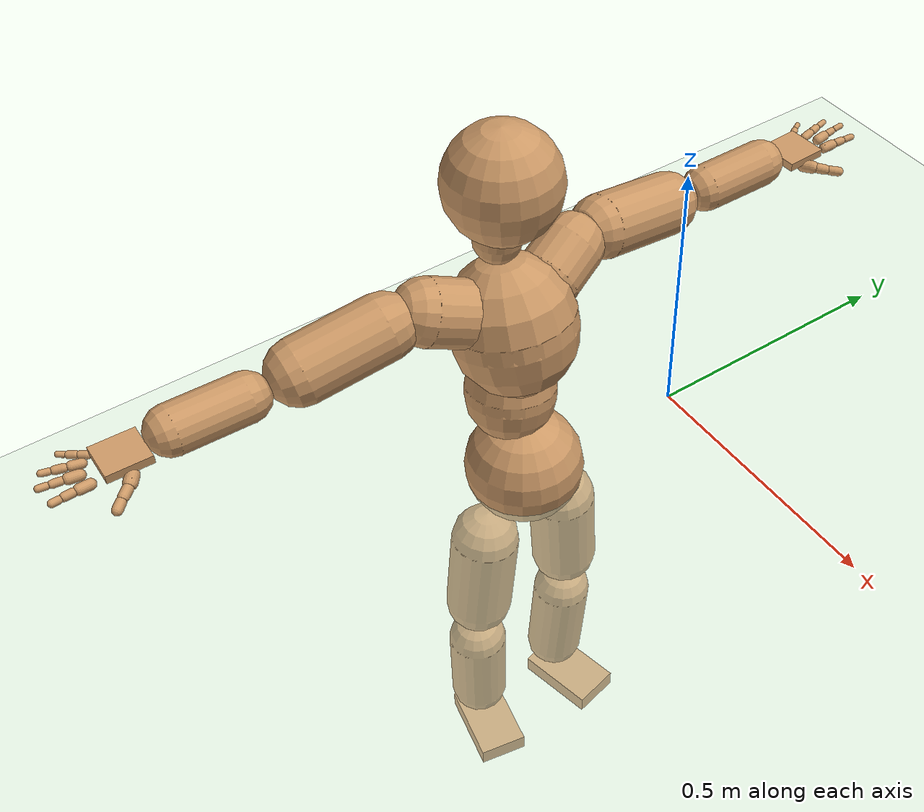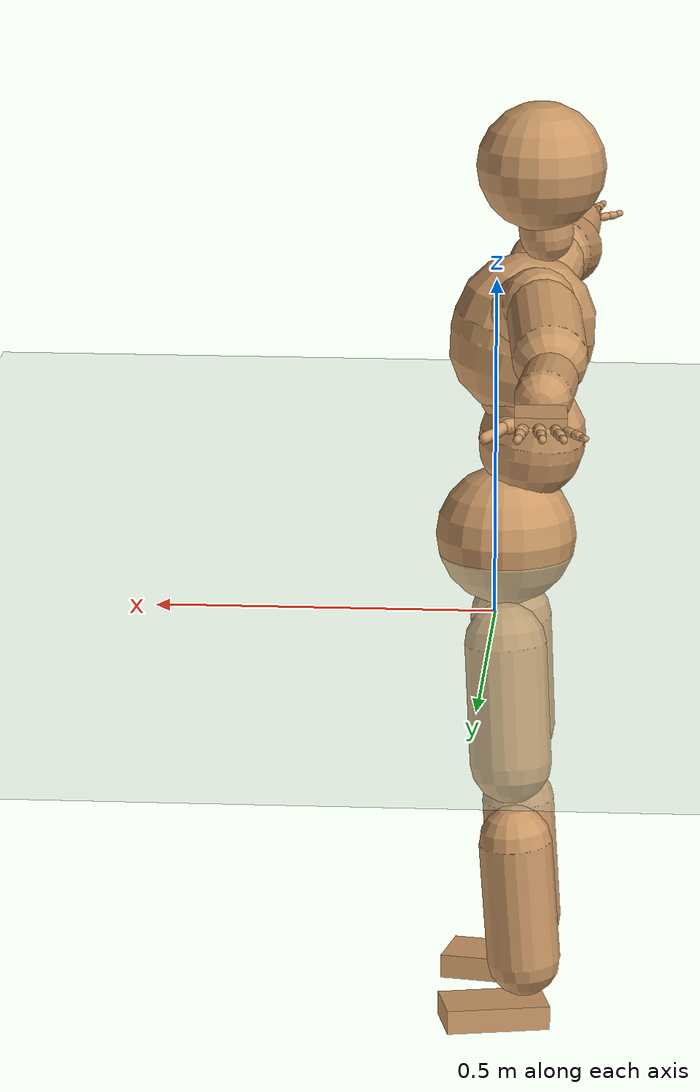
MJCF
<mujoco model="humanoid">
  <compiler coordinate="local" angle="radian"/>
  <default>
    <joint damping="0.0" armature="0.01" stiffness="0.0" limited="true"/>
    <geom conaffinity="1" condim="3" contype="7" margin="0.001" rgba="0.8 0.6 .4 1"/>
  </default>
  <asset>
    <texture type="skybox" builtin="gradient" rgb1=".4 .5 .6" rgb2="0 0 0" width="100" height="100"/>
    <texture builtin="flat" height="1278" mark="cross" markrgb="1 1 1" name="texgeom" random="0.01" rgb1="0.8 0.6 0.4" rgb2="0.8 0.6 0.4" type="cube" width="127"/>
    <texture builtin="checker" height="100" name="texplane" rgb1="0 0 0" rgb2="0.8 0.8 0.8" type="2d" width="100"/>
    <material name="MatPlane" reflectance="0.5" shininess="1" specular="1" texrepeat="60 60" texture="texplane"/>
    <material name="geom" texture="texgeom" texuniform="true"/>
  </asset>
  <worldbody>
    <light cutoff="100" diffuse="1 1 1" dir="-0 0 -1.3" directional="true" exponent="1" pos="0 0 1.3" specular=".1 .1 .1"/>
    <geom conaffinity="1" condim="3" name="floor" pos="0 0 0" rgba="0.8 0.9 0.8 1" size="100 100 .2" type="plane" material="MatPlane"/>
    <body name="Pelvis" pos="0.0007 -0.3308 0.0265">
      <freejoint name="Pelvis"/>
      <geom type="sphere" contype="1" conaffinity="1" density="500" size="0.1070" pos="0.0000 0.0000 0.0000" name="Pelvis"/>
      <body name="L_Hip" pos="-0.001 0.0811 -0.0864">
        <joint name="L_Hip_x" type="hinge" pos="0 0 0" axis="1 0 0" stiffness="800" damping="80" armature="0.02" range="-180.0000 180.0000"/>
        <joint name="L_Hip_y" type="hinge" pos="0 0 0" axis="0 1 0" stiffness="800" damping="80" armature="0.02" range="-180.0000 180.0000"/>
        <joint name="L_Hip_z" type="hinge" pos="0 0 0" axis="0 0 1" stiffness="800" damping="80" armature="0.02" range="-180.0000 180.0000"/>
        <geom type="capsule" contype="1" conaffinity="1" density="500" fromto="-0.0032 0.0048 -0.0614 -0.0129 0.0193 -0.2456" size="0.0626" name="L_Hip"/>
        <body name="L_Knee" pos="-0.0162 0.0241 -0.307">
          <joint name="L_Knee_x" type="hinge" pos="0 0 0" axis="1 0 0" stiffness="800" damping="80" armature="0.02" range="-180.0000 180.0000"/>
          <joint name="L_Knee_y" type="hinge" pos="0 0 0" axis="0 1 0" stiffness="800" damping="80" armature="0.02" range="-180.0000 180.0000"/>
          <joint name="L_Knee_z" type="hinge" pos="0 0 0" axis="0 0 1" stiffness="800" damping="80" armature="0.02" range="-180.0000 180.0000"/>
          <geom type="capsule" contype="1" conaffinity="1" density="500" fromto="-0.0046 -0.0025 -0.0641 -0.0184 -0.0099 -0.2563" size="0.056" name="L_Knee"/>
          <body name="L_Ankle" pos="-0.023 -0.0124 -0.3204">
            <joint name="L_Ankle_x" type="hinge" pos="0 0 0" axis="1 0 0" stiffness="800" damping="80" armature="0.02" range="-180.0000 180.0000"/>
            <joint name="L_Ankle_y" type="hinge" pos="0 0 0" axis="0 1 0" stiffness="800" damping="80" armature="0.02" range="-180.0000 180.0000"/>
            <joint name="L_Ankle_z" type="hinge" pos="0 0 0" axis="0 0 1" stiffness="800" damping="80" armature="0.02" range="-180.0000 180.0000"/>
            <geom type="box" contype="1" conaffinity="1" density="500" pos="0.0498 0.0109 -0.0176" size="0.0793 0.0466 0.0185" quat="0.9942 0.0000 0.0000 0.1077" name="L_Ankle"/>
            <body name="L_Toe" pos="0.0997 0.0219 -0.0351">
              <joint name="L_Toe_x" type="hinge" pos="0 0 0" axis="1 0 0" stiffness="500" damping="50" armature="0.02" range="-180.0000 180.0000"/>
              <joint name="L_Toe_y" type="hinge" pos="0 0 0" axis="0 1 0" stiffness="500" damping="50" armature="0.02" range="-180.0000 180.0000"/>
              <joint name="L_Toe_z" type="hinge" pos="0 0 0" axis="0 0 1" stiffness="500" damping="50" armature="0.02" range="-180.0000 180.0000"/>
              <geom type="box" contype="1" conaffinity="1" density="500" pos="0.0000 0.0000 0.0192" size="0.0009 0.0023 0.001" quat="0.9934 0.0000 0.0000 0.1150" name="L_Toe"/>
            </body>
          </body>
        </body>
      </body>
      <body name="R_Hip" pos="-0.0019 -0.0799 -0.0921">
        <joint name="R_Hip_x" type="hinge" pos="0 0 0" axis="1 0 0" stiffness="800" damping="80" armature="0.02" range="-180.0000 180.0000"/>
        <joint name="R_Hip_y" type="hinge" pos="0 0 0" axis="0 1 0" stiffness="800" damping="80" armature="0.02" range="-180.0000 180.0000"/>
        <joint name="R_Hip_z" type="hinge" pos="0 0 0" axis="0 0 1" stiffness="800" damping="80" armature="0.02" range="-180.0000 180.0000"/>
        <geom type="capsule" contype="1" conaffinity="1" density="500" fromto="-0.0020 -0.0058 -0.0606 -0.0081 -0.0231 -0.2426" size="0.0624" name="R_Hip"/>
        <body name="R_Knee" pos="-0.0101 -0.0288 -0.3032">
          <joint name="R_Knee_x" type="hinge" pos="0 0 0" axis="1 0 0" stiffness="800" damping="80" armature="0.02" range="-180.0000 180.0000"/>
          <joint name="R_Knee_y" type="hinge" pos="0 0 0" axis="0 1 0" stiffness="800" damping="80" armature="0.02" range="-180.0000 180.0000"/>
          <joint name="R_Knee_z" type="hinge" pos="0 0 0" axis="0 0 1" stiffness="800" damping="80" armature="0.02" range="-180.0000 180.0000"/>
          <geom type="capsule" contype="1" conaffinity="1" density="500" fromto="-0.0039 0.0016 -0.0624 -0.0158 0.0062 -0.2497" size="0.056" name="R_Knee"/>
          <body name="R_Ankle" pos="-0.0197 0.0078 -0.3121">
            <joint name="R_Ankle_x" type="hinge" pos="0 0 0" axis="1 0 0" stiffness="800" damping="80" armature="0.02" range="-180.0000 180.0000"/>
            <joint name="R_Ankle_y" type="hinge" pos="0 0 0" axis="0 1 0" stiffness="800" damping="80" armature="0.02" range="-180.0000 180.0000"/>
            <joint name="R_Ankle_z" type="hinge" pos="0 0 0" axis="0 0 1" stiffness="800" damping="80" armature="0.02" range="-180.0000 180.0000"/>
            <geom type="box" contype="1" conaffinity="1" density="500" pos="0.0469 -0.0090 -0.0192" size="0.0793 0.0466 0.0185" quat="0.9955 0.0000 0.0000 -0.0947" name="R_Ankle"/>
            <body name="R_Toe" pos="0.0938 -0.018 -0.0383">
              <joint name="R_Toe_x" type="hinge" pos="0 0 0" axis="1 0 0" stiffness="500" damping="50" armature="0.02" range="-180.0000 180.0000"/>
              <joint name="R_Toe_y" type="hinge" pos="0 0 0" axis="0 1 0" stiffness="500" damping="50" armature="0.02" range="-180.0000 180.0000"/>
              <joint name="R_Toe_z" type="hinge" pos="0 0 0" axis="0 0 1" stiffness="500" damping="50" armature="0.02" range="-180.0000 180.0000"/>
              <geom type="box" contype="1" conaffinity="1" density="500" pos="0.0000 0.0000 0.0208" size="0.0009 0.0023 0.001" quat="0.9966 0.0000 0.0000 -0.0827" name="R_Toe"/>
            </body>
          </body>
        </body>
      </body>
      <body name="Torso" pos="-0.0314 -0.0064 0.0998">
        <joint name="Torso_x" type="hinge" pos="0 0 0" axis="1 0 0" stiffness="1000" damping="100" armature="0.02" range="-180.0000 180.0000"/>
        <joint name="Torso_y" type="hinge" pos="0 0 0" axis="0 1 0" stiffness="1000" damping="100" armature="0.02" range="-180.0000 180.0000"/>
        <joint name="Torso_z" type="hinge" pos="0 0 0" axis="0 0 1" stiffness="1000" damping="100" armature="0.02" range="-180.0000 180.0000"/>
        <geom type="capsule" contype="1" conaffinity="1" density="500" fromto="-0.0087 0.0085 0.0613 -0.0058 0.0057 0.0408" size="0.0804" name="Torso"/>
        <body name="Spine" pos="-0.0144 0.0142 0.1021">
          <joint name="Spine_x" type="hinge" pos="0 0 0" axis="1 0 0" stiffness="1000" damping="100" armature="0.02" range="-180.0000 180.0000"/>
          <joint name="Spine_y" type="hinge" pos="0 0 0" axis="0 1 0" stiffness="1000" damping="100" armature="0.02" range="-180.0000 180.0000"/>
          <joint name="Spine_z" type="hinge" pos="0 0 0" axis="0 0 1" stiffness="1000" damping="100" armature="0.02" range="-180.0000 180.0000"/>
          <geom type="capsule" contype="1" conaffinity="1" density="500" fromto="0.0242 -0.0049 0.0241 0.0161 -0.0032 0.0160" size="0.0649" name="Spine"/>
          <body name="Chest" pos="0.0403 -0.0081 0.0401">
            <joint name="Chest_x" type="hinge" pos="0 0 0" axis="1 0 0" stiffness="1000" damping="100" armature="0.02" range="-180.0000 180.0000"/>
            <joint name="Chest_y" type="hinge" pos="0 0 0" axis="0 1 0" stiffness="1000" damping="100" armature="0.02" range="-180.0000 180.0000"/>
            <joint name="Chest_z" type="hinge" pos="0 0 0" axis="0 0 1" stiffness="1000" damping="100" armature="0.02" range="-180.0000 180.0000"/>
            <geom type="capsule" contype="1" conaffinity="1" density="500" fromto="-0.0207 -0.0021 0.0853 -0.0138 -0.0014 0.0568" size="0.109" name="Chest"/>
            <body name="Neck" pos="-0.0541 -0.0068 0.1971">
              <joint name="Neck_x" type="hinge" pos="0 0 0" axis="1 0 0" stiffness="500" damping="50" armature="0.02" range="-180.0000 180.0000"/>
              <joint name="Neck_y" type="hinge" pos="0 0 0" axis="0 1 0" stiffness="500" damping="50" armature="0.02" range="-180.0000 180.0000"/>
              <joint name="Neck_z" type="hinge" pos="0 0 0" axis="0 0 1" stiffness="500" damping="50" armature="0.02" range="-180.0000 180.0000"/>
              <geom type="capsule" contype="1" conaffinity="1" density="500" fromto="0.0020 0.0019 0.0266 0.0080 0.0075 0.1065" size="0.0411" name="Neck"/>
              <body name="Head" pos="0.01 0.0094 0.1331">
                <joint name="Head_x" type="hinge" pos="0 0 0" axis="1 0 0" stiffness="500" damping="50" armature="0.02" range="-180.0000 180.0000"/>
                <joint name="Head_y" type="hinge" pos="0 0 0" axis="0 1 0" stiffness="500" damping="50" armature="0.02" range="-180.0000 180.0000"/>
                <joint name="Head_z" type="hinge" pos="0 0 0" axis="0 0 1" stiffness="500" damping="50" armature="0.02" range="-180.0000 180.0000"/>
                <geom type="sphere" contype="1" conaffinity="1" density="500" size="0.0977" pos="0.0000 0.0000 0.0000" name="Head"/>
              </body>
            </body>
            <body name="L_Thorax" pos="-0.0214 0.0571 0.1166">
              <joint name="L_Thorax_x" type="hinge" pos="0 0 0" axis="1 0 0" stiffness="500" damping="50" armature="0.02" range="-180.0000 180.0000"/>
              <joint name="L_Thorax_y" type="hinge" pos="0 0 0" axis="0 1 0" stiffness="500" damping="50" armature="0.02" range="-180.0000 180.0000"/>
              <joint name="L_Thorax_z" type="hinge" pos="0 0 0" axis="0 0 1" stiffness="500" damping="50" armature="0.02" range="-180.0000 180.0000"/>
              <geom type="capsule" contype="1" conaffinity="1" density="500" fromto="-0.0064 0.0194 0.0081 -0.0254 0.0776 0.0325" size="0.0561" name="L_Thorax"/>
              <body name="L_Shoulder" pos="-0.0318 0.0969 0.0407">
                <joint name="L_Shoulder_x" type="hinge" pos="0 0 0" axis="1 0 0" stiffness="500" damping="50" armature="0.02" range="-180.0000 180.0000"/>
                <joint name="L_Shoulder_y" type="hinge" pos="0 0 0" axis="0 1 0" stiffness="500" damping="50" armature="0.02" range="-180.0000 180.0000"/>
                <joint name="L_Shoulder_z" type="hinge" pos="0 0 0" axis="0 0 1" stiffness="500" damping="50" armature="0.02" range="-180.0000 180.0000"/>
                <geom type="capsule" contype="1" conaffinity="1" density="500" fromto="-0.0052 0.0504 -0.0094 -0.0210 0.2016 -0.0377" size="0.0553" name="L_Shoulder"/>
                <body name="L_Elbow" pos="-0.0262 0.252 -0.0471">
                  <joint name="L_Elbow_x" type="hinge" pos="0 0 0" axis="1 0 0" stiffness="500" damping="50" armature="0.02" range="-720.0000 720.0000"/>
                  <joint name="L_Elbow_y" type="hinge" pos="0 0 0" axis="0 1 0" stiffness="500" damping="50" armature="0.02" range="-720.0000 720.0000"/>
                  <joint name="L_Elbow_z" type="hinge" pos="0 0 0" axis="0 0 1" stiffness="500" damping="50" armature="0.02" range="-720.0000 720.0000"/>
                  <geom type="capsule" contype="1" conaffinity="1" density="500" fromto="0.0015 0.0406 0.0015 0.0061 0.1623 0.0060" size="0.0413" name="L_Elbow"/>
                  <body name="L_Wrist" pos="0.0076 0.2029 0.0075">
                    <joint name="L_Wrist_x" type="hinge" pos="0 0 0" axis="1 0 0" stiffness="300" damping="30" armature="0.02" range="-180.0000 180.0000"/>
                    <joint name="L_Wrist_y" type="hinge" pos="0 0 0" axis="0 1 0" stiffness="300" damping="30" armature="0.02" range="-180.0000 180.0000"/>
                    <joint name="L_Wrist_z" type="hinge" pos="0 0 0" axis="0 0 1" stiffness="300" damping="30" armature="0.02" range="-180.0000 180.0000"/>
                    <geom type="box" contype="1" conaffinity="1" density="500" pos="-0.0018 0.0380 -0.0077" size="0.0374 0.0371 0.0073" quat="0.7235 0.0000 0.0000 -0.6903" name="L_Wrist"/>
                    <body name="L_Index1" pos="0.0203 0.0901 -0.0132">
                      <joint name="L_Index1_x" type="hinge" pos="0 0 0" axis="1 0 0" stiffness="100" damping="10" armature="0.02" range="-180.0000 180.0000"/>
                      <joint name="L_Index1_y" type="hinge" pos="0 0 0" axis="0 1 0" stiffness="100" damping="10" armature="0.02" range="-180.0000 180.0000"/>
                      <joint name="L_Index1_z" type="hinge" pos="0 0 0" axis="0 0 1" stiffness="100" damping="10" armature="0.02" range="-180.0000 180.0000"/>
                      <geom type="capsule" contype="1" conaffinity="1" density="500" fromto="0.0005 0.0059 0.0006 0.0021 0.0236 0.0022" size="0.0089" name="L_Index1"/>
                      <body name="L_Index2" pos="0.0026 0.0295 0.0028">
                        <joint name="L_Index2_x" type="hinge" pos="0 0 0" axis="1 0 0" stiffness="100" damping="10" armature="0.02" range="-180.0000 180.0000"/>
                        <joint name="L_Index2_y" type="hinge" pos="0 0 0" axis="0 1 0" stiffness="100" damping="10" armature="0.02" range="-180.0000 180.0000"/>
                        <joint name="L_Index2_z" type="hinge" pos="0 0 0" axis="0 0 1" stiffness="100" damping="10" armature="0.02" range="-180.0000 180.0000"/>
                        <geom type="capsule" contype="1" conaffinity="1" density="500" fromto="0.0001 0.0042 -0.0003 0.0002 0.0167 -0.0010" size="0.0073" name="L_Index2"/>
                        <body name="L_Index3" pos="0.0003 0.0209 -0.0013">
                          <joint name="L_Index3_x" type="hinge" pos="0 0 0" axis="1 0 0" stiffness="100" damping="10" armature="0.02" range="-180.0000 180.0000"/>
                          <joint name="L_Index3_y" type="hinge" pos="0 0 0" axis="0 1 0" stiffness="100" damping="10" armature="0.02" range="-180.0000 180.0000"/>
                          <joint name="L_Index3_z" type="hinge" pos="0 0 0" axis="0 0 1" stiffness="100" damping="10" armature="0.02" range="-180.0000 180.0000"/>
                          <geom type="capsule" contype="1" conaffinity="1" density="500" fromto="0.0005 0.0046 0.0001 0.0018 0.0183 0.0006" size="0.006" name="L_Index3"/>
                        </body>
                      </body>
                    </body>
                    <body name="L_Middle1" pos="-0.0017 0.0963 -0.0107">
                      <joint name="L_Middle1_x" type="hinge" pos="0 0 0" axis="1 0 0" stiffness="100" damping="10" armature="0.02" range="-180.0000 180.0000"/>
                      <joint name="L_Middle1_y" type="hinge" pos="0 0 0" axis="0 1 0" stiffness="100" damping="10" armature="0.02" range="-180.0000 180.0000"/>
                      <joint name="L_Middle1_z" type="hinge" pos="0 0 0" axis="0 0 1" stiffness="100" damping="10" armature="0.02" range="-180.0000 180.0000"/>
                      <geom type="capsule" contype="1" conaffinity="1" density="500" fromto="-0.0007 0.0056 0.0003 -0.0028 0.0223 0.0012" size="0.0091" name="L_Middle1"/>
                      <body name="L_Middle2" pos="-0.0036 0.0279 0.0015">
                        <joint name="L_Middle2_x" type="hinge" pos="0 0 0" axis="1 0 0" stiffness="100" damping="10" armature="0.02" range="-180.0000 180.0000"/>
                        <joint name="L_Middle2_y" type="hinge" pos="0 0 0" axis="0 1 0" stiffness="100" damping="10" armature="0.02" range="-180.0000 180.0000"/>
                        <joint name="L_Middle2_z" type="hinge" pos="0 0 0" axis="0 0 1" stiffness="100" damping="10" armature="0.02" range="-180.0000 180.0000"/>
                        <geom type="capsule" contype="1" conaffinity="1" density="500" fromto="-0.0007 0.0043 -0.0001 -0.0028 0.0172 -0.0005" size="0.0066" name="L_Middle2"/>
                        <body name="L_Middle3" pos="-0.0035 0.0215 -0.0006">
                          <joint name="L_Middle3_x" type="hinge" pos="0 0 0" axis="1 0 0" stiffness="100" damping="10" armature="0.02" range="-180.0000 180.0000"/>
                          <joint name="L_Middle3_y" type="hinge" pos="0 0 0" axis="0 1 0" stiffness="100" damping="10" armature="0.02" range="-180.0000 180.0000"/>
                          <joint name="L_Middle3_z" type="hinge" pos="0 0 0" axis="0 0 1" stiffness="100" damping="10" armature="0.02" range="-180.0000 180.0000"/>
                          <geom type="capsule" contype="1" conaffinity="1" density="500" fromto="-0.0003 0.0047 0.0003 -0.0012 0.0188 0.0011" size="0.0055" name="L_Middle3"/>
                        </body>
                      </body>
                    </body>
                    <body name="L_Pinky1" pos="-0.0387 0.073 -0.0184">
                      <joint name="L_Pinky1_x" type="hinge" pos="0 0 0" axis="1 0 0" stiffness="100" damping="10" armature="0.02" range="-180.0000 180.0000"/>
                      <joint name="L_Pinky1_y" type="hinge" pos="0 0 0" axis="0 1 0" stiffness="100" damping="10" armature="0.02" range="-180.0000 180.0000"/>
                      <joint name="L_Pinky1_z" type="hinge" pos="0 0 0" axis="0 0 1" stiffness="100" damping="10" armature="0.02" range="-180.0000 180.0000"/>
                      <geom type="capsule" contype="1" conaffinity="1" density="500" fromto="-0.0023 0.0028 -0.0001 -0.0091 0.0111 -0.0004" size="0.0065" name="L_Pinky1"/>
                      <body name="L_Pinky2" pos="-0.0114 0.0139 -0.0005">
                        <joint name="L_Pinky2_x" type="hinge" pos="0 0 0" axis="1 0 0" stiffness="100" damping="10" armature="0.02" range="-180.0000 180.0000"/>
                        <joint name="L_Pinky2_y" type="hinge" pos="0 0 0" axis="0 1 0" stiffness="100" damping="10" armature="0.02" range="-180.0000 180.0000"/>
                        <joint name="L_Pinky2_z" type="hinge" pos="0 0 0" axis="0 0 1" stiffness="100" damping="10" armature="0.02" range="-180.0000 180.0000"/>
                        <geom type="capsule" contype="1" conaffinity="1" density="500" fromto="-0.0022 0.0028 -0.0002 -0.0087 0.0113 -0.0008" size="0.0063" name="L_Pinky2"/>
                        <body name="L_Pinky3" pos="-0.0109 0.0142 -0.001">
                          <joint name="L_Pinky3_x" type="hinge" pos="0 0 0" axis="1 0 0" stiffness="100" damping="10" armature="0.02" range="-180.0000 180.0000"/>
                          <joint name="L_Pinky3_y" type="hinge" pos="0 0 0" axis="0 1 0" stiffness="100" damping="10" armature="0.02" range="-180.0000 180.0000"/>
                          <joint name="L_Pinky3_z" type="hinge" pos="0 0 0" axis="0 0 1" stiffness="100" damping="10" armature="0.02" range="-180.0000 180.0000"/>
                          <geom type="capsule" contype="1" conaffinity="1" density="500" fromto="-0.0018 0.0032 0.0002 -0.0071 0.0129 0.0008" size="0.0047" name="L_Pinky3"/>
                        </body>
                      </body>
                    </body>
                    <body name="L_Ring1" pos="-0.0237 0.0852 -0.0133">
                      <joint name="L_Ring1_x" type="hinge" pos="0 0 0" axis="1 0 0" stiffness="100" damping="10" armature="0.02" range="-180.0000 180.0000"/>
                      <joint name="L_Ring1_y" type="hinge" pos="0 0 0" axis="0 1 0" stiffness="100" damping="10" armature="0.02" range="-180.0000 180.0000"/>
                      <joint name="L_Ring1_z" type="hinge" pos="0 0 0" axis="0 0 1" stiffness="100" damping="10" armature="0.02" range="-180.0000 180.0000"/>
                      <geom type="capsule" contype="1" conaffinity="1" density="500" fromto="-0.0010 0.0051 0.0003 -0.0041 0.0205 0.0014" size="0.0078" name="L_Ring1"/>
                      <body name="L_Ring2" pos="-0.0051 0.0256 0.0017">
                        <joint name="L_Ring2_x" type="hinge" pos="0 0 0" axis="1 0 0" stiffness="100" damping="10" armature="0.02" range="-180.0000 180.0000"/>
                        <joint name="L_Ring2_y" type="hinge" pos="0 0 0" axis="0 1 0" stiffness="100" damping="10" armature="0.02" range="-180.0000 180.0000"/>
                        <joint name="L_Ring2_z" type="hinge" pos="0 0 0" axis="0 0 1" stiffness="100" damping="10" armature="0.02" range="-180.0000 180.0000"/>
                        <geom type="capsule" contype="1" conaffinity="1" density="500" fromto="-0.0013 0.0042 -0.0002 -0.0054 0.0167 -0.0009" size="0.0071" name="L_Ring2"/>
                        <body name="L_Ring3" pos="-0.0067 0.0209 -0.0011">
                          <joint name="L_Ring3_x" type="hinge" pos="0 0 0" axis="1 0 0" stiffness="100" damping="10" armature="0.02" range="-180.0000 180.0000"/>
                          <joint name="L_Ring3_y" type="hinge" pos="0 0 0" axis="0 1 0" stiffness="100" damping="10" armature="0.02" range="-180.0000 180.0000"/>
                          <joint name="L_Ring3_z" type="hinge" pos="0 0 0" axis="0 0 1" stiffness="100" damping="10" armature="0.02" range="-180.0000 180.0000"/>
                          <geom type="capsule" contype="1" conaffinity="1" density="500" fromto="-0.0009 0.0046 0.0002 -0.0038 0.0183 0.0007" size="0.0054" name="L_Ring3"/>
                        </body>
                      </body>
                    </body>
                    <body name="L_Thumb1" pos="0.026 0.0356 -0.0213">
                      <joint name="L_Thumb1_x" type="hinge" pos="0 0 0" axis="1 0 0" stiffness="100" damping="10" armature="0.02" range="-180.0000 180.0000"/>
                      <joint name="L_Thumb1_y" type="hinge" pos="0 0 0" axis="0 1 0" stiffness="100" damping="10" armature="0.02" range="-180.0000 180.0000"/>
                      <joint name="L_Thumb1_z" type="hinge" pos="0 0 0" axis="0 0 1" stiffness="100" damping="10" armature="0.02" range="-180.0000 180.0000"/>
                      <geom type="capsule" contype="1" conaffinity="1" density="500" fromto="0.0045 0.0031 0.0003 0.0180 0.0123 0.0011" size="0.0112" name="L_Thumb1"/>
                      <body name="L_Thumb2" pos="0.0225 0.0154 0.0014">
                        <joint name="L_Thumb2_x" type="hinge" pos="0 0 0" axis="1 0 0" stiffness="100" damping="10" armature="0.02" range="-180.0000 180.0000"/>
                        <joint name="L_Thumb2_y" type="hinge" pos="0 0 0" axis="0 1 0" stiffness="100" damping="10" armature="0.02" range="-180.0000 180.0000"/>
                        <joint name="L_Thumb2_z" type="hinge" pos="0 0 0" axis="0 0 1" stiffness="100" damping="10" armature="0.02" range="-180.0000 180.0000"/>
                        <geom type="capsule" contype="1" conaffinity="1" density="500" fromto="0.0026 0.0037 -0.0011 0.0105 0.0148 -0.0044" size="0.0089" name="L_Thumb2"/>
                        <body name="L_Thumb3" pos="0.0132 0.0185 -0.0055">
                          <joint name="L_Thumb3_x" type="hinge" pos="0 0 0" axis="1 0 0" stiffness="100" damping="10" armature="0.02" range="-180.0000 180.0000"/>
                          <joint name="L_Thumb3_y" type="hinge" pos="0 0 0" axis="0 1 0" stiffness="100" damping="10" armature="0.02" range="-180.0000 180.0000"/>
                          <joint name="L_Thumb3_z" type="hinge" pos="0 0 0" axis="0 0 1" stiffness="100" damping="10" armature="0.02" range="-180.0000 180.0000"/>
                          <geom type="capsule" contype="1" conaffinity="1" density="500" fromto="0.0030 0.0041 -0.0007 0.0121 0.0164 -0.0028" size="0.0083" name="L_Thumb3"/>
                        </body>
                      </body>
                    </body>
                  </body>
                </body>
              </body>
            </body>
            <body name="R_Thorax" pos="-0.0282 -0.0607 0.1127">
              <joint name="R_Thorax_x" type="hinge" pos="0 0 0" axis="1 0 0" stiffness="500" damping="50" armature="0.02" range="-180.0000 180.0000"/>
              <joint name="R_Thorax_y" type="hinge" pos="0 0 0" axis="0 1 0" stiffness="500" damping="50" armature="0.02" range="-180.0000 180.0000"/>
              <joint name="R_Thorax_z" type="hinge" pos="0 0 0" axis="0 0 1" stiffness="500" damping="50" armature="0.02" range="-180.0000 180.0000"/>
              <geom type="capsule" contype="1" conaffinity="1" density="500" fromto="-0.0047 -0.0210 0.0084 -0.0189 -0.0841 0.0335" size="0.0573" name="R_Thorax"/>
              <body name="R_Shoulder" pos="-0.0236 -0.1052 0.0418">
                <joint name="R_Shoulder_x" type="hinge" pos="0 0 0" axis="1 0 0" stiffness="500" damping="50" armature="0.02" range="-180.0000 180.0000"/>
                <joint name="R_Shoulder_y" type="hinge" pos="0 0 0" axis="0 1 0" stiffness="500" damping="50" armature="0.02" range="-180.0000 180.0000"/>
                <joint name="R_Shoulder_z" type="hinge" pos="0 0 0" axis="0 0 1" stiffness="500" damping="50" armature="0.02" range="-180.0000 180.0000"/>
                <geom type="capsule" contype="1" conaffinity="1" density="500" fromto="-0.0040 -0.0483 -0.0083 -0.0162 -0.1933 -0.0332" size="0.0558" name="R_Shoulder"/>
                <body name="R_Elbow" pos="-0.0202 -0.2416 -0.0414">
                  <joint name="R_Elbow_x" type="hinge" pos="0 0 0" axis="1 0 0" stiffness="500" damping="50" armature="0.02" range="-720.0000 720.0000"/>
                  <joint name="R_Elbow_y" type="hinge" pos="0 0 0" axis="0 1 0" stiffness="500" damping="50" armature="0.02" range="-720.0000 720.0000"/>
                  <joint name="R_Elbow_z" type="hinge" pos="0 0 0" axis="0 0 1" stiffness="500" damping="50" armature="0.02" range="-720.0000 720.0000"/>
                  <geom type="capsule" contype="1" conaffinity="1" density="500" fromto="-0.0003 -0.0406 0.0007 -0.0011 -0.1624 0.0028" size="0.0414" name="R_Elbow"/>
                  <body name="R_Wrist" pos="-0.0014 -0.203 0.0035">
                    <joint name="R_Wrist_x" type="hinge" pos="0 0 0" axis="1 0 0" stiffness="300" damping="30" armature="0.02" range="-180.0000 180.0000"/>
                    <joint name="R_Wrist_y" type="hinge" pos="0 0 0" axis="0 1 0" stiffness="300" damping="30" armature="0.02" range="-180.0000 180.0000"/>
                    <joint name="R_Wrist_z" type="hinge" pos="0 0 0" axis="0 0 1" stiffness="300" damping="30" armature="0.02" range="-180.0000 180.0000"/>
                    <geom type="box" contype="1" conaffinity="1" density="500" pos="-0.0010 -0.0375 -0.0072" size="0.0374 0.0347 0.0075" quat="0.7162 0.0000 0.0000 0.6979" name="R_Wrist"/>
                    <body name="R_Index1" pos="0.0219 -0.0892 -0.0122">
                      <joint name="R_Index1_x" type="hinge" pos="0 0 0" axis="1 0 0" stiffness="100" damping="10" armature="0.02" range="-180.0000 180.0000"/>
                      <joint name="R_Index1_y" type="hinge" pos="0 0 0" axis="0 1 0" stiffness="100" damping="10" armature="0.02" range="-180.0000 180.0000"/>
                      <joint name="R_Index1_z" type="hinge" pos="0 0 0" axis="0 0 1" stiffness="100" damping="10" armature="0.02" range="-180.0000 180.0000"/>
                      <geom type="capsule" contype="1" conaffinity="1" density="500" fromto="0.0005 -0.0059 0.0006 0.0021 -0.0236 0.0022" size="0.0089" name="R_Index1"/>
                      <body name="R_Index2" pos="0.0026 -0.0295 0.0028">
                        <joint name="R_Index2_x" type="hinge" pos="0 0 0" axis="1 0 0" stiffness="100" damping="10" armature="0.02" range="-180.0000 180.0000"/>
                        <joint name="R_Index2_y" type="hinge" pos="0 0 0" axis="0 1 0" stiffness="100" damping="10" armature="0.02" range="-180.0000 180.0000"/>
                        <joint name="R_Index2_z" type="hinge" pos="0 0 0" axis="0 0 1" stiffness="100" damping="10" armature="0.02" range="-180.0000 180.0000"/>
                        <geom type="capsule" contype="1" conaffinity="1" density="500" fromto="0.0001 -0.0042 -0.0003 0.0002 -0.0167 -0.0010" size="0.0073" name="R_Index2"/>
                        <body name="R_Index3" pos="0.0003 -0.0209 -0.0013">
                          <joint name="R_Index3_x" type="hinge" pos="0 0 0" axis="1 0 0" stiffness="100" damping="10" armature="0.02" range="-180.0000 180.0000"/>
                          <joint name="R_Index3_y" type="hinge" pos="0 0 0" axis="0 1 0" stiffness="100" damping="10" armature="0.02" range="-180.0000 180.0000"/>
                          <joint name="R_Index3_z" type="hinge" pos="0 0 0" axis="0 0 1" stiffness="100" damping="10" armature="0.02" range="-180.0000 180.0000"/>
                          <geom type="capsule" contype="1" conaffinity="1" density="500" fromto="0.0005 -0.0038 0.0001 0.0018 -0.0151 0.0006" size="0.0063" name="R_Index3"/>
                        </body>
                      </body>
                    </body>
                    <body name="R_Middle1" pos="-0.0001 -0.0954 -0.0097">
                      <joint name="R_Middle1_x" type="hinge" pos="0 0 0" axis="1 0 0" stiffness="100" damping="10" armature="0.02" range="-180.0000 180.0000"/>
                      <joint name="R_Middle1_y" type="hinge" pos="0 0 0" axis="0 1 0" stiffness="100" damping="10" armature="0.02" range="-180.0000 180.0000"/>
                      <joint name="R_Middle1_z" type="hinge" pos="0 0 0" axis="0 0 1" stiffness="100" damping="10" armature="0.02" range="-180.0000 180.0000"/>
                      <geom type="capsule" contype="1" conaffinity="1" density="500" fromto="-0.0007 -0.0056 0.0003 -0.0028 -0.0223 0.0012" size="0.0091" name="R_Middle1"/>
                      <body name="R_Middle2" pos="-0.0036 -0.0279 0.0015">
                        <joint name="R_Middle2_x" type="hinge" pos="0 0 0" axis="1 0 0" stiffness="100" damping="10" armature="0.02" range="-180.0000 180.0000"/>
                        <joint name="R_Middle2_y" type="hinge" pos="0 0 0" axis="0 1 0" stiffness="100" damping="10" armature="0.02" range="-180.0000 180.0000"/>
                        <joint name="R_Middle2_z" type="hinge" pos="0 0 0" axis="0 0 1" stiffness="100" damping="10" armature="0.02" range="-180.0000 180.0000"/>
                        <geom type="capsule" contype="1" conaffinity="1" density="500" fromto="-0.0007 -0.0043 -0.0001 -0.0028 -0.0172 -0.0005" size="0.0066" name="R_Middle2"/>
                        <body name="R_Middle3" pos="-0.0035 -0.0215 -0.0006">
                          <joint name="R_Middle3_x" type="hinge" pos="0 0 0" axis="1 0 0" stiffness="100" damping="10" armature="0.02" range="-180.0000 180.0000"/>
                          <joint name="R_Middle3_y" type="hinge" pos="0 0 0" axis="0 1 0" stiffness="100" damping="10" armature="0.02" range="-180.0000 180.0000"/>
                          <joint name="R_Middle3_z" type="hinge" pos="0 0 0" axis="0 0 1" stiffness="100" damping="10" armature="0.02" range="-180.0000 180.0000"/>
                          <geom type="capsule" contype="1" conaffinity="1" density="500" fromto="-0.0003 -0.0039 0.0003 -0.0012 -0.0156 0.0011" size="0.0058" name="R_Middle3"/>
                        </body>
                      </body>
                    </body>
                    <body name="R_Pinky1" pos="-0.0371 -0.0721 -0.0174">
                      <joint name="R_Pinky1_x" type="hinge" pos="0 0 0" axis="1 0 0" stiffness="100" damping="10" armature="0.02" range="-180.0000 180.0000"/>
                      <joint name="R_Pinky1_y" type="hinge" pos="0 0 0" axis="0 1 0" stiffness="100" damping="10" armature="0.02" range="-180.0000 180.0000"/>
                      <joint name="R_Pinky1_z" type="hinge" pos="0 0 0" axis="0 0 1" stiffness="100" damping="10" armature="0.02" range="-180.0000 180.0000"/>
                      <geom type="capsule" contype="1" conaffinity="1" density="500" fromto="-0.0023 -0.0028 -0.0001 -0.0091 -0.0111 -0.0004" size="0.0065" name="R_Pinky1"/>
                      <body name="R_Pinky2" pos="-0.0114 -0.0139 -0.0005">
                        <joint name="R_Pinky2_x" type="hinge" pos="0 0 0" axis="1 0 0" stiffness="100" damping="10" armature="0.02" range="-180.0000 180.0000"/>
                        <joint name="R_Pinky2_y" type="hinge" pos="0 0 0" axis="0 1 0" stiffness="100" damping="10" armature="0.02" range="-180.0000 180.0000"/>
                        <joint name="R_Pinky2_z" type="hinge" pos="0 0 0" axis="0 0 1" stiffness="100" damping="10" armature="0.02" range="-180.0000 180.0000"/>
                        <geom type="capsule" contype="1" conaffinity="1" density="500" fromto="-0.0022 -0.0028 -0.0002 -0.0087 -0.0113 -0.0008" size="0.0063" name="R_Pinky2"/>
                        <body name="R_Pinky3" pos="-0.0109 -0.0142 -0.001">
                          <joint name="R_Pinky3_x" type="hinge" pos="0 0 0" axis="1 0 0" stiffness="100" damping="10" armature="0.02" range="-180.0000 180.0000"/>
                          <joint name="R_Pinky3_y" type="hinge" pos="0 0 0" axis="0 1 0" stiffness="100" damping="10" armature="0.02" range="-180.0000 180.0000"/>
                          <joint name="R_Pinky3_z" type="hinge" pos="0 0 0" axis="0 0 1" stiffness="100" damping="10" armature="0.02" range="-180.0000 180.0000"/>
                          <geom type="capsule" contype="1" conaffinity="1" density="500" fromto="-0.0018 -0.0024 0.0002 -0.0071 -0.0097 0.0008" size="0.005" name="R_Pinky3"/>
                        </body>
                      </body>
                    </body>
                    <body name="R_Ring1" pos="-0.0221 -0.0842 -0.0123">
                      <joint name="R_Ring1_x" type="hinge" pos="0 0 0" axis="1 0 0" stiffness="100" damping="10" armature="0.02" range="-180.0000 180.0000"/>
                      <joint name="R_Ring1_y" type="hinge" pos="0 0 0" axis="0 1 0" stiffness="100" damping="10" armature="0.02" range="-180.0000 180.0000"/>
                      <joint name="R_Ring1_z" type="hinge" pos="0 0 0" axis="0 0 1" stiffness="100" damping="10" armature="0.02" range="-180.0000 180.0000"/>
                      <geom type="capsule" contype="1" conaffinity="1" density="500" fromto="-0.0010 -0.0051 0.0003 -0.0041 -0.0205 0.0014" size="0.0078" name="R_Ring1"/>
                      <body name="R_Ring2" pos="-0.0051 -0.0256 0.0017">
                        <joint name="R_Ring2_x" type="hinge" pos="0 0 0" axis="1 0 0" stiffness="100" damping="10" armature="0.02" range="-180.0000 180.0000"/>
                        <joint name="R_Ring2_y" type="hinge" pos="0 0 0" axis="0 1 0" stiffness="100" damping="10" armature="0.02" range="-180.0000 180.0000"/>
                        <joint name="R_Ring2_z" type="hinge" pos="0 0 0" axis="0 0 1" stiffness="100" damping="10" armature="0.02" range="-180.0000 180.0000"/>
                        <geom type="capsule" contype="1" conaffinity="1" density="500" fromto="-0.0013 -0.0042 -0.0002 -0.0054 -0.0167 -0.0009" size="0.0071" name="R_Ring2"/>
                        <body name="R_Ring3" pos="-0.0067 -0.0209 -0.0011">
                          <joint name="R_Ring3_x" type="hinge" pos="0 0 0" axis="1 0 0" stiffness="100" damping="10" armature="0.02" range="-180.0000 180.0000"/>
                          <joint name="R_Ring3_y" type="hinge" pos="0 0 0" axis="0 1 0" stiffness="100" damping="10" armature="0.02" range="-180.0000 180.0000"/>
                          <joint name="R_Ring3_z" type="hinge" pos="0 0 0" axis="0 0 1" stiffness="100" damping="10" armature="0.02" range="-180.0000 180.0000"/>
                          <geom type="capsule" contype="1" conaffinity="1" density="500" fromto="-0.0009 -0.0038 0.0002 -0.0038 -0.0151 0.0007" size="0.0056" name="R_Ring3"/>
                        </body>
                      </body>
                    </body>
                    <body name="R_Thumb1" pos="0.0277 -0.0346 -0.0203">
                      <joint name="R_Thumb1_x" type="hinge" pos="0 0 0" axis="1 0 0" stiffness="100" damping="10" armature="0.02" range="-180.0000 180.0000"/>
                      <joint name="R_Thumb1_y" type="hinge" pos="0 0 0" axis="0 1 0" stiffness="100" damping="10" armature="0.02" range="-180.0000 180.0000"/>
                      <joint name="R_Thumb1_z" type="hinge" pos="0 0 0" axis="0 0 1" stiffness="100" damping="10" armature="0.02" range="-180.0000 180.0000"/>
                      <geom type="capsule" contype="1" conaffinity="1" density="500" fromto="0.0045 -0.0031 0.0003 0.0180 -0.0123 0.0011" size="0.0112" name="R_Thumb1"/>
                      <body name="R_Thumb2" pos="0.0225 -0.0154 0.0014">
                        <joint name="R_Thumb2_x" type="hinge" pos="0 0 0" axis="1 0 0" stiffness="100" damping="10" armature="0.02" range="-180.0000 180.0000"/>
                        <joint name="R_Thumb2_y" type="hinge" pos="0 0 0" axis="0 1 0" stiffness="100" damping="10" armature="0.02" range="-180.0000 180.0000"/>
                        <joint name="R_Thumb2_z" type="hinge" pos="0 0 0" axis="0 0 1" stiffness="100" damping="10" armature="0.02" range="-180.0000 180.0000"/>
                        <geom type="capsule" contype="1" conaffinity="1" density="500" fromto="0.0026 -0.0037 -0.0011 0.0105 -0.0148 -0.0044" size="0.0089" name="R_Thumb2"/>
                        <body name="R_Thumb3" pos="0.0132 -0.0185 -0.0055">
                          <joint name="R_Thumb3_x" type="hinge" pos="0 0 0" axis="1 0 0" stiffness="100" damping="10" armature="0.02" range="-180.0000 180.0000"/>
                          <joint name="R_Thumb3_y" type="hinge" pos="0 0 0" axis="0 1 0" stiffness="100" damping="10" armature="0.02" range="-180.0000 180.0000"/>
                          <joint name="R_Thumb3_z" type="hinge" pos="0 0 0" axis="0 0 1" stiffness="100" damping="10" armature="0.02" range="-180.0000 180.0000"/>
                          <geom type="capsule" contype="1" conaffinity="1" density="500" fromto="0.0030 -0.0033 -0.0007 0.0121 -0.0132 -0.0028" size="0.0085" name="R_Thumb3"/>
                        </body>
                      </body>
                    </body>
                  </body>
                </body>
              </body>
            </body>
          </body>
        </body>
      </body>
    </body>
  </worldbody>
  <actuator>
    <motor name="L_Hip_x" joint="L_Hip_x" gear="500"/>
    <motor name="L_Hip_y" joint="L_Hip_y" gear="500"/>
    <motor name="L_Hip_z" joint="L_Hip_z" gear="500"/>
    <motor name="L_Knee_x" joint="L_Knee_x" gear="500"/>
    <motor name="L_Knee_y" joint="L_Knee_y" gear="500"/>
    <motor name="L_Knee_z" joint="L_Knee_z" gear="500"/>
    <motor name="L_Ankle_x" joint="L_Ankle_x" gear="500"/>
    <motor name="L_Ankle_y" joint="L_Ankle_y" gear="500"/>
    <motor name="L_Ankle_z" joint="L_Ankle_z" gear="500"/>
    <motor name="L_Toe_x" joint="L_Toe_x" gear="500"/>
    <motor name="L_Toe_y" joint="L_Toe_y" gear="500"/>
    <motor name="L_Toe_z" joint="L_Toe_z" gear="500"/>
    <motor name="R_Hip_x" joint="R_Hip_x" gear="500"/>
    <motor name="R_Hip_y" joint="R_Hip_y" gear="500"/>
    <motor name="R_Hip_z" joint="R_Hip_z" gear="500"/>
    <motor name="R_Knee_x" joint="R_Knee_x" gear="500"/>
    <motor name="R_Knee_y" joint="R_Knee_y" gear="500"/>
    <motor name="R_Knee_z" joint="R_Knee_z" gear="500"/>
    <motor name="R_Ankle_x" joint="R_Ankle_x" gear="500"/>
    <motor name="R_Ankle_y" joint="R_Ankle_y" gear="500"/>
    <motor name="R_Ankle_z" joint="R_Ankle_z" gear="500"/>
    <motor name="R_Toe_x" joint="R_Toe_x" gear="500"/>
    <motor name="R_Toe_y" joint="R_Toe_y" gear="500"/>
    <motor name="R_Toe_z" joint="R_Toe_z" gear="500"/>
    <motor name="Torso_x" joint="Torso_x" gear="500"/>
    <motor name="Torso_y" joint="Torso_y" gear="500"/>
    <motor name="Torso_z" joint="Torso_z" gear="500"/>
    <motor name="Spine_x" joint="Spine_x" gear="500"/>
    <motor name="Spine_y" joint="Spine_y" gear="500"/>
    <motor name="Spine_z" joint="Spine_z" gear="500"/>
    <motor name="Chest_x" joint="Chest_x" gear="500"/>
    <motor name="Chest_y" joint="Chest_y" gear="500"/>
    <motor name="Chest_z" joint="Chest_z" gear="500"/>
    <motor name="Neck_x" joint="Neck_x" gear="500"/>
    <motor name="Neck_y" joint="Neck_y" gear="500"/>
    <motor name="Neck_z" joint="Neck_z" gear="500"/>
    <motor name="Head_x" joint="Head_x" gear="500"/>
    <motor name="Head_y" joint="Head_y" gear="500"/>
    <motor name="Head_z" joint="Head_z" gear="500"/>
    <motor name="L_Thorax_x" joint="L_Thorax_x" gear="500"/>
    <motor name="L_Thorax_y" joint="L_Thorax_y" gear="500"/>
    <motor name="L_Thorax_z" joint="L_Thorax_z" gear="500"/>
    <motor name="L_Shoulder_x" joint="L_Shoulder_x" gear="500"/>
    <motor name="L_Shoulder_y" joint="L_Shoulder_y" gear="500"/>
    <motor name="L_Shoulder_z" joint="L_Shoulder_z" gear="500"/>
    <motor name="L_Elbow_x" joint="L_Elbow_x" gear="500"/>
    <motor name="L_Elbow_y" joint="L_Elbow_y" gear="500"/>
    <motor name="L_Elbow_z" joint="L_Elbow_z" gear="500"/>
    <motor name="L_Wrist_x" joint="L_Wrist_x" gear="500"/>
    <motor name="L_Wrist_y" joint="L_Wrist_y" gear="500"/>
    <motor name="L_Wrist_z" joint="L_Wrist_z" gear="500"/>
    <motor name="L_Index1_x" joint="L_Index1_x" gear="500"/>
    <motor name="L_Index1_y" joint="L_Index1_y" gear="500"/>
    <motor name="L_Index1_z" joint="L_Index1_z" gear="500"/>
    <motor name="L_Index2_x" joint="L_Index2_x" gear="500"/>
    <motor name="L_Index2_y" joint="L_Index2_y" gear="500"/>
    <motor name="L_Index2_z" joint="L_Index2_z" gear="500"/>
    <motor name="L_Index3_x" joint="L_Index3_x" gear="500"/>
    <motor name="L_Index3_y" joint="L_Index3_y" gear="500"/>
    <motor name="L_Index3_z" joint="L_Index3_z" gear="500"/>
    <motor name="L_Middle1_x" joint="L_Middle1_x" gear="500"/>
    <motor name="L_Middle1_y" joint="L_Middle1_y" gear="500"/>
    <motor name="L_Middle1_z" joint="L_Middle1_z" gear="500"/>
    <motor name="L_Middle2_x" joint="L_Middle2_x" gear="500"/>
    <motor name="L_Middle2_y" joint="L_Middle2_y" gear="500"/>
    <motor name="L_Middle2_z" joint="L_Middle2_z" gear="500"/>
    <motor name="L_Middle3_x" joint="L_Middle3_x" gear="500"/>
    <motor name="L_Middle3_y" joint="L_Middle3_y" gear="500"/>
    <motor name="L_Middle3_z" joint="L_Middle3_z" gear="500"/>
    <motor name="L_Pinky1_x" joint="L_Pinky1_x" gear="500"/>
    <motor name="L_Pinky1_y" joint="L_Pinky1_y" gear="500"/>
    <motor name="L_Pinky1_z" joint="L_Pinky1_z" gear="500"/>
    <motor name="L_Pinky2_x" joint="L_Pinky2_x" gear="500"/>
    <motor name="L_Pinky2_y" joint="L_Pinky2_y" gear="500"/>
    <motor name="L_Pinky2_z" joint="L_Pinky2_z" gear="500"/>
    <motor name="L_Pinky3_x" joint="L_Pinky3_x" gear="500"/>
    <motor name="L_Pinky3_y" joint="L_Pinky3_y" gear="500"/>
    <motor name="L_Pinky3_z" joint="L_Pinky3_z" gear="500"/>
    <motor name="L_Ring1_x" joint="L_Ring1_x" gear="500"/>
    <motor name="L_Ring1_y" joint="L_Ring1_y" gear="500"/>
    <motor name="L_Ring1_z" joint="L_Ring1_z" gear="500"/>
    <motor name="L_Ring2_x" joint="L_Ring2_x" gear="500"/>
    <motor name="L_Ring2_y" joint="L_Ring2_y" gear="500"/>
    <motor name="L_Ring2_z" joint="L_Ring2_z" gear="500"/>
    <motor name="L_Ring3_x" joint="L_Ring3_x" gear="500"/>
    <motor name="L_Ring3_y" joint="L_Ring3_y" gear="500"/>
    <motor name="L_Ring3_z" joint="L_Ring3_z" gear="500"/>
    <motor name="L_Thumb1_x" joint="L_Thumb1_x" gear="500"/>
    <motor name="L_Thumb1_y" joint="L_Thumb1_y" gear="500"/>
    <motor name="L_Thumb1_z" joint="L_Thumb1_z" gear="500"/>
    <motor name="L_Thumb2_x" joint="L_Thumb2_x" gear="500"/>
    <motor name="L_Thumb2_y" joint="L_Thumb2_y" gear="500"/>
    <motor name="L_Thumb2_z" joint="L_Thumb2_z" gear="500"/>
    <motor name="L_Thumb3_x" joint="L_Thumb3_x" gear="500"/>
    <motor name="L_Thumb3_y" joint="L_Thumb3_y" gear="500"/>
    <motor name="L_Thumb3_z" joint="L_Thumb3_z" gear="500"/>
    <motor name="R_Thorax_x" joint="R_Thorax_x" gear="500"/>
    <motor name="R_Thorax_y" joint="R_Thorax_y" gear="500"/>
    <motor name="R_Thorax_z" joint="R_Thorax_z" gear="500"/>
    <motor name="R_Shoulder_x" joint="R_Shoulder_x" gear="500"/>
    <motor name="R_Shoulder_y" joint="R_Shoulder_y" gear="500"/>
    <motor name="R_Shoulder_z" joint="R_Shoulder_z" gear="500"/>
    <motor name="R_Elbow_x" joint="R_Elbow_x" gear="500"/>
    <motor name="R_Elbow_y" joint="R_Elbow_y" gear="500"/>
    <motor name="R_Elbow_z" joint="R_Elbow_z" gear="500"/>
    <motor name="R_Wrist_x" joint="R_Wrist_x" gear="500"/>
    <motor name="R_Wrist_y" joint="R_Wrist_y" gear="500"/>
    <motor name="R_Wrist_z" joint="R_Wrist_z" gear="500"/>
    <motor name="R_Index1_x" joint="R_Index1_x" gear="500"/>
    <motor name="R_Index1_y" joint="R_Index1_y" gear="500"/>
    <motor name="R_Index1_z" joint="R_Index1_z" gear="500"/>
    <motor name="R_Index2_x" joint="R_Index2_x" gear="500"/>
    <motor name="R_Index2_y" joint="R_Index2_y" gear="500"/>
    <motor name="R_Index2_z" joint="R_Index2_z" gear="500"/>
    <motor name="R_Index3_x" joint="R_Index3_x" gear="500"/>
    <motor name="R_Index3_y" joint="R_Index3_y" gear="500"/>
    <motor name="R_Index3_z" joint="R_Index3_z" gear="500"/>
    <motor name="R_Middle1_x" joint="R_Middle1_x" gear="500"/>
    <motor name="R_Middle1_y" joint="R_Middle1_y" gear="500"/>
    <motor name="R_Middle1_z" joint="R_Middle1_z" gear="500"/>
    <motor name="R_Middle2_x" joint="R_Middle2_x" gear="500"/>
    <motor name="R_Middle2_y" joint="R_Middle2_y" gear="500"/>
    <motor name="R_Middle2_z" joint="R_Middle2_z" gear="500"/>
    <motor name="R_Middle3_x" joint="R_Middle3_x" gear="500"/>
    <motor name="R_Middle3_y" joint="R_Middle3_y" gear="500"/>
    <motor name="R_Middle3_z" joint="R_Middle3_z" gear="500"/>
    <motor name="R_Pinky1_x" joint="R_Pinky1_x" gear="500"/>
    <motor name="R_Pinky1_y" joint="R_Pinky1_y" gear="500"/>
    <motor name="R_Pinky1_z" joint="R_Pinky1_z" gear="500"/>
    <motor name="R_Pinky2_x" joint="R_Pinky2_x" gear="500"/>
    <motor name="R_Pinky2_y" joint="R_Pinky2_y" gear="500"/>
    <motor name="R_Pinky2_z" joint="R_Pinky2_z" gear="500"/>
    <motor name="R_Pinky3_x" joint="R_Pinky3_x" gear="500"/>
    <motor name="R_Pinky3_y" joint="R_Pinky3_y" gear="500"/>
    <motor name="R_Pinky3_z" joint="R_Pinky3_z" gear="500"/>
    <motor name="R_Ring1_x" joint="R_Ring1_x" gear="500"/>
    <motor name="R_Ring1_y" joint="R_Ring1_y" gear="500"/>
    <motor name="R_Ring1_z" joint="R_Ring1_z" gear="500"/>
    <motor name="R_Ring2_x" joint="R_Ring2_x" gear="500"/>
    <motor name="R_Ring2_y" joint="R_Ring2_y" gear="500"/>
    <motor name="R_Ring2_z" joint="R_Ring2_z" gear="500"/>
    <motor name="R_Ring3_x" joint="R_Ring3_x" gear="500"/>
    <motor name="R_Ring3_y" joint="R_Ring3_y" gear="500"/>
    <motor name="R_Ring3_z" joint="R_Ring3_z" gear="500"/>
    <motor name="R_Thumb1_x" joint="R_Thumb1_x" gear="500"/>
    <motor name="R_Thumb1_y" joint="R_Thumb1_y" gear="500"/>
    <motor name="R_Thumb1_z" joint="R_Thumb1_z" gear="500"/>
    <motor name="R_Thumb2_x" joint="R_Thumb2_x" gear="500"/>
    <motor name="R_Thumb2_y" joint="R_Thumb2_y" gear="500"/>
    <motor name="R_Thumb2_z" joint="R_Thumb2_z" gear="500"/>
    <motor name="R_Thumb3_x" joint="R_Thumb3_x" gear="500"/>
    <motor name="R_Thumb3_y" joint="R_Thumb3_y" gear="500"/>
    <motor name="R_Thumb3_z" joint="R_Thumb3_z" gear="500"/>
  </actuator>
  <contact>
    <exclude body1="Torso" body2="Chest"/>
    <exclude body1="Head" body2="Chest"/>
    <exclude body1="R_Knee" body2="R_Toe"/>
    <exclude body1="R_Knee" body2="L_Ankle"/>
    <exclude body1="R_Knee" body2="L_Toe"/>
    <exclude body1="L_Knee" body2="L_Toe"/>
    <exclude body1="L_Knee" body2="R_Ankle"/>
    <exclude body1="L_Knee" body2="R_Toe"/>
    <exclude body1="L_Shoulder" body2="Chest"/>
    <exclude body1="R_Shoulder" body2="Chest"/>
  </contact>
  <sensor/>
  <size njmax="700" nconmax="700"/>
</mujoco>
